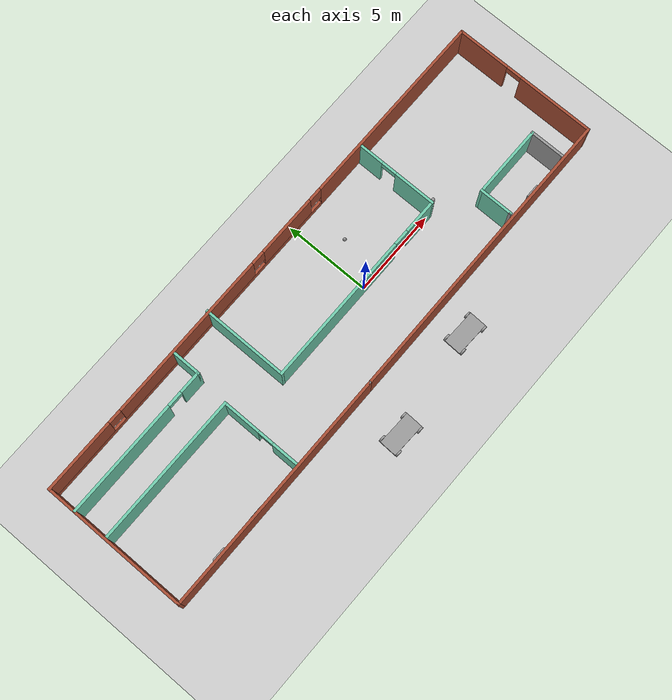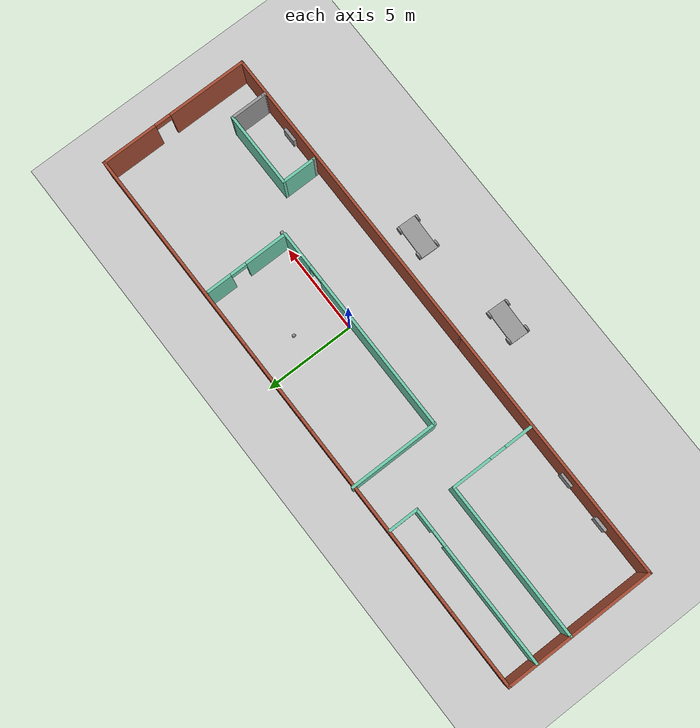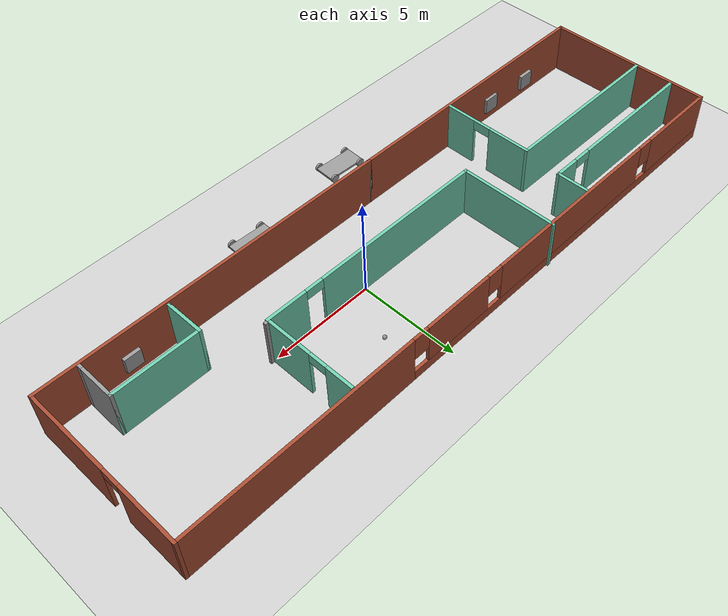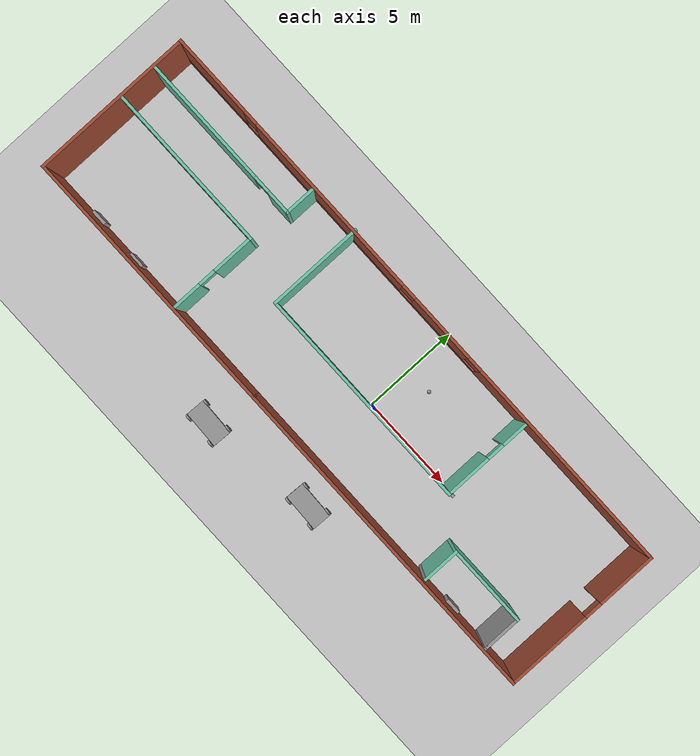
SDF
<sdf version="1.6">
 <world name="default">
  <plugin name="hello" filename="libhello.so"/>
  <light name="sun" type="directional">
   <pose>0 0 10 0 -0 0</pose>
   <diffuse>0.8 0.8 0.8 1</diffuse>
   <specular>0.2 0.2 0.2 1</specular>
   <attenuation>
    <range>1000</range>
    <constant>0.9</constant>
    <linear>0.01</linear>
    <quadratic>0.001</quadratic>
   </attenuation>
   <direction>-0.5 0.1 -0.9</direction>
  </light>
  <model name="ground_plane">
   <static>1</static>
   <link name="link">
    <collision name="collision">
     <geometry><plane><normal>0 0 1</normal><size>100 100</size></plane></geometry>
     <surface>
      <contact><collide_bitmask>65535</collide_bitmask></contact>
      <friction><ode><mu>100</mu><mu2>50</mu2></ode></friction>
     </surface>
    </collision>
    <visual name="visual">
     <cast_shadows>0</cast_shadows>
     <geometry><plane><normal>0 0 1</normal><size>100 100</size></plane></geometry>
     <material>
      <script><uri>file://media/materials/scripts/gazebo.material</uri><name>Gazebo/Grey</name></script>
     </material>
    </visual>
   </link>
  </model>
  <gravity>0 0 -9.8</gravity>
  <magnetic_field>6e-06 2.3e-05 -4.2e-05</magnetic_field>
  <atmosphere type="adiabatic"/>
  <physics name="default_physics" default="0" type="ode">
   <max_step_size>0.001</max_step_size>
   <real_time_factor>1</real_time_factor>
   <real_time_update_rate>1000</real_time_update_rate>
  </physics>
  <scene><ambient>0.4 0.4 0.4 1</ambient><background>0.7 0.7 0.7 1</background><shadows>1</shadows></scene>
  <spherical_coordinates>
   <surface_model>EARTH_WGS84</surface_model>
   <latitude_deg>0</latitude_deg>
   <longitude_deg>0</longitude_deg>
   <elevation>0</elevation>
   <heading_deg>0</heading_deg>
  </spherical_coordinates>
  <model name="BuildingModel">
   <pose>-2.30997 0.53903 0 0 -0 0</pose>
   <link name="Wall_27">
    <collision name="Wall_27_Collision">
     <geometry><box><size>0.15 0.15 2.5</size></box></geometry>
     <pose>0 0 1.25 0 -0 0</pose>
    </collision>
    <visual name="Wall_27_Visual">
     <pose>0 0 1.25 0 -0 0</pose>
     <geometry><box><size>0.15 0.15 2.5</size></box></geometry>
     <material>
      <script><uri>file://media/materials/scripts/gazebo.material</uri><name>Gazebo/Grey</name></script>
      <ambient>1 1 1 1</ambient>
     </material>
     <meta><layer>0</layer></meta>
    </visual>
    <pose>-1.675 -4.21418 0 0 -0 0</pose>
   </link>
   <link name="Wall_38">
    <collision name="Wall_38_Collision">
     <geometry><box><size>0.15 0.15 2.5</size></box></geometry>
     <pose>0 0 1.25 0 -0 0</pose>
    </collision>
    <visual name="Wall_38_Visual">
     <pose>0 0 1.25 0 -0 0</pose>
     <geometry><box><size>0.15 0.15 2.5</size></box></geometry>
     <material>
      <script><uri>file://media/materials/scripts/gazebo.material</uri><name>Gazebo/Grey</name></script>
      <ambient>1 1 1 1</ambient>
     </material>
     <meta><layer>0</layer></meta>
    </visual>
    <pose>7.62126 -0.567923 0 0 -0 0</pose>
   </link>
   <link name="Wall_45">
    <collision name="Wall_45_Collision">
     <geometry><box><size>17.5 0.15 2.5</size></box></geometry>
     <pose>0 0 1.25 0 -0 0</pose>
    </collision>
    <visual name="Wall_45_Visual">
     <pose>0 0 1.25 0 -0 0</pose>
     <geometry><box><size>17.5 0.15 2.5</size></box></geometry>
     <material>
      <script><uri>file://media/materials/scripts/gazebo.material</uri><name>Gazebo/Bricks</name></script>
      <ambient>1 1 1 1</ambient>
     </material>
     <meta><layer>0</layer></meta>
    </visual>
    <pose>7 -4.21418 0 0 -0 0</pose>
   </link>
   <link name="Wall_46">
    <pose>15.675 -0.039184 0 0 -0 1.5708</pose>
    <visual name="Wall_46_Visual_0">
     <pose>-2.01527 0 1.25 0 -0 0</pose>
     <geometry><box><size>4.46946 0.15 2.5</size></box></geometry>
     <material>
      <script><uri>file://media/materials/scripts/gazebo.material</uri><name>Gazebo/Bricks</name></script>
      <ambient>1 1 1 1</ambient>
     </material>
     <meta><layer>0</layer></meta>
    </visual>
    <collision name="Wall_46_Collision_0">
     <geometry><box><size>4.46946 0.15 2.5</size></box></geometry>
     <pose>-2.01527 0 1.25 0 -0 0</pose>
    </collision>
    <visual name="Wall_46_Visual_1">
     <pose>2.68473 0 1.25 0 -0 0</pose>
     <geometry><box><size>3.13054 0.15 2.5</size></box></geometry>
     <material>
      <script><uri>file://media/materials/scripts/gazebo.material</uri><name>Gazebo/Bricks</name></script>
      <ambient>1 1 1 1</ambient>
     </material>
     <meta><layer>0</layer></meta>
    </visual>
    <collision name="Wall_46_Collision_1">
     <geometry><box><size>3.13054 0.15 2.5</size></box></geometry>
     <pose>2.68473 0 1.25 0 -0 0</pose>
    </collision>
    <visual name="Wall_46_Visual_2">
     <pose>0.669456 0 2.25 0 -0 0</pose>
     <geometry><box><size>0.9 0.15 0.5</size></box></geometry>
     <material>
      <script><uri>file://media/materials/scripts/gazebo.material</uri><name>Gazebo/Bricks</name></script>
      <ambient>1 1 1 1</ambient>
     </material>
     <meta><layer>0</layer></meta>
    </visual>
    <collision name="Wall_46_Collision_2">
     <geometry><box><size>0.9 0.15 0.5</size></box></geometry>
     <pose>0.669456 0 2.25 0 -0 0</pose>
    </collision>
   </link>
   <link name="Wall_47">
    <pose>0 4.13582 0 0 -0 3.14159</pose>
    <visual name="Wall_47_Visual_0">
     <pose>-10.0427 0 1.25 0 -0 0</pose>
     <geometry><box><size>11.4147 0.15 2.5</size></box></geometry>
     <material>
      <script><uri>file://media/materials/scripts/gazebo.material</uri><name>Gazebo/Bricks</name></script>
      <ambient>1 1 1 1</ambient>
     </material>
     <meta><layer>0</layer></meta>
    </visual>
    <collision name="Wall_47_Collision_0">
     <geometry><box><size>11.4147 0.15 2.5</size></box></geometry>
     <pose>-10.0427 0 1.25 0 -0 0</pose>
    </collision>
    <visual name="Wall_47_Visual_1">
     <pose>5.70733 0 0.25 0 -0 0</pose>
     <geometry><box><size>20.0853 0.15 0.5</size></box></geometry>
     <material>
      <script><uri>file://media/materials/scripts/gazebo.material</uri><name>Gazebo/Bricks</name></script>
      <ambient>1 1 1 1</ambient>
     </material>
     <meta><layer>0</layer></meta>
    </visual>
    <collision name="Wall_47_Collision_1">
     <geometry><box><size>20.0853 0.15 0.5</size></box></geometry>
     <pose>5.70733 0 0.25 0 -0 0</pose>
    </collision>
    <visual name="Wall_47_Visual_2">
     <pose>-1.74527 0 1.5 0 -0 0</pose>
     <geometry><box><size>3.58012 0.15 2</size></box></geometry>
     <material>
      <script><uri>file://media/materials/scripts/gazebo.material</uri><name>Gazebo/Bricks</name></script>
      <ambient>1 1 1 1</ambient>
     </material>
     <meta><layer>0</layer></meta>
    </visual>
    <collision name="Wall_47_Collision_2">
     <geometry><box><size>3.58012 0.15 2</size></box></geometry>
     <pose>-1.74527 0 1.5 0 -0 0</pose>
    </collision>
    <visual name="Wall_47_Visual_3">
     <pose>5.73743 0 1.5 0 -0 0</pose>
     <geometry><box><size>9.78529 0.15 2</size></box></geometry>
     <material>
      <script><uri>file://media/materials/scripts/gazebo.material</uri><name>Gazebo/Bricks</name></script>
      <ambient>1 1 1 1</ambient>
     </material>
     <meta><layer>0</layer></meta>
    </visual>
    <collision name="Wall_47_Collision_3">
     <geometry><box><size>9.78529 0.15 2</size></box></geometry>
     <pose>5.73743 0 1.5 0 -0 0</pose>
    </collision>
    <visual name="Wall_47_Visual_4">
     <pose>13.59 0 1.5 0 -0 0</pose>
     <geometry><box><size>4.31992 0.15 2</size></box></geometry>
     <material>
      <script><uri>file://media/materials/scripts/gazebo.material</uri><name>Gazebo/Bricks</name></script>
      <ambient>1 1 1 1</ambient>
     </material>
     <meta><layer>0</layer></meta>
    </visual>
    <collision name="Wall_47_Collision_4">
     <geometry><box><size>4.31992 0.15 2</size></box></geometry>
     <pose>13.59 0 1.5 0 -0 0</pose>
    </collision>
    <visual name="Wall_47_Visual_5">
     <pose>-3.93533 0 1.9 0 -0 0</pose>
     <geometry><box><size>0.8 0.15 1.2</size></box></geometry>
     <material>
      <script><uri>file://media/materials/scripts/gazebo.material</uri><name>Gazebo/Bricks</name></script>
      <ambient>1 1 1 1</ambient>
     </material>
     <meta><layer>0</layer></meta>
    </visual>
    <collision name="Wall_47_Collision_5">
     <geometry><box><size>0.8 0.15 1.2</size></box></geometry>
     <pose>-3.93533 0 1.9 0 -0 0</pose>
    </collision>
    <visual name="Wall_47_Visual_6">
     <pose>0.444786 0 1.9 0 -0 0</pose>
     <geometry><box><size>0.8 0.15 1.2</size></box></geometry>
     <material>
      <script><uri>file://media/materials/scripts/gazebo.material</uri><name>Gazebo/Bricks</name></script>
      <ambient>1 1 1 1</ambient>
     </material>
     <meta><layer>0</layer></meta>
    </visual>
    <collision name="Wall_47_Collision_6">
     <geometry><box><size>0.8 0.15 1.2</size></box></geometry>
     <pose>0.444786 0 1.9 0 -0 0</pose>
    </collision>
    <visual name="Wall_47_Visual_7">
     <pose>11.0301 0 1.9 0 -0 0</pose>
     <geometry><box><size>0.8 0.15 1.2</size></box></geometry>
     <material>
      <script><uri>file://media/materials/scripts/gazebo.material</uri><name>Gazebo/Bricks</name></script>
      <ambient>1 1 1 1</ambient>
     </material>
     <meta><layer>0</layer></meta>
    </visual>
    <collision name="Wall_47_Collision_7">
     <geometry><box><size>0.8 0.15 1.2</size></box></geometry>
     <pose>11.0301 0 1.9 0 -0 0</pose>
    </collision>
   </link>
   <link name="Wall_48">
    <collision name="Wall_48_Collision">
     <geometry><box><size>8.5 0.15 2.5</size></box></geometry>
     <pose>0 0 1.25 0 -0 0</pose>
    </collision>
    <visual name="Wall_48_Visual">
     <pose>0 0 1.25 0 -0 0</pose>
     <geometry><box><size>8.5 0.15 2.5</size></box></geometry>
     <material>
      <script><uri>file://media/materials/scripts/gazebo.material</uri><name>Gazebo/Bricks</name></script>
      <ambient>1 1 1 1</ambient>
     </material>
     <meta><layer>0</layer></meta>
    </visual>
    <pose>-15.675 -0.039184 0 0 0 -1.5708</pose>
   </link>
   <link name="Wall_49">
    <collision name="Wall_49_Collision">
     <geometry><box><size>14.15 0.15 2.5</size></box></geometry>
     <pose>0 0 1.25 0 -0 0</pose>
    </collision>
    <visual name="Wall_49_Visual">
     <pose>0 0 1.25 0 -0 0</pose>
     <geometry><box><size>14.15 0.15 2.5</size></box></geometry>
     <material>
      <script><uri>file://media/materials/scripts/gazebo.material</uri><name>Gazebo/Bricks</name></script>
      <ambient>1 1 1 1</ambient>
     </material>
     <meta><layer>0</layer></meta>
    </visual>
    <pose>-8.675 -4.21418 0 0 -0 0</pose>
   </link>
   <link name="Wall_51">
    <pose>-11.2005 2.49243 0 0 -0 0</pose>
    <visual name="Wall_51_Visual_0">
     <pose>-1.11223 0 1.25 0 -0 0</pose>
     <geometry><box><size>6.77554 0.15 2.5</size></box></geometry>
     <material>
      <script><uri>file://media/materials/scripts/gazebo.material</uri><name>Gazebo/Grey</name></script>
      <ambient>0.435294 0.796078 0.67451 1</ambient>
     </material>
     <meta><layer>0</layer></meta>
    </visual>
    <collision name="Wall_51_Collision_0">
     <geometry><box><size>6.77554 0.15 2.5</size></box></geometry>
     <pose>-1.11223 0 1.25 0 -0 0</pose>
    </collision>
    <visual name="Wall_51_Visual_1">
     <pose>3.83777 0 1.25 0 -0 0</pose>
     <geometry><box><size>1.32446 0.15 2.5</size></box></geometry>
     <material>
      <script><uri>file://media/materials/scripts/gazebo.material</uri><name>Gazebo/Grey</name></script>
      <ambient>0.435294 0.796078 0.67451 1</ambient>
     </material>
     <meta><layer>0</layer></meta>
    </visual>
    <collision name="Wall_51_Collision_1">
     <geometry><box><size>1.32446 0.15 2.5</size></box></geometry>
     <pose>3.83777 0 1.25 0 -0 0</pose>
    </collision>
    <visual name="Wall_51_Visual_2">
     <pose>2.72554 0 2.25 0 -0 0</pose>
     <geometry><box><size>0.9 0.15 0.5</size></box></geometry>
     <material>
      <script><uri>file://media/materials/scripts/gazebo.material</uri><name>Gazebo/Grey</name></script>
      <ambient>0.435294 0.796078 0.67451 1</ambient>
     </material>
     <meta><layer>0</layer></meta>
    </visual>
    <collision name="Wall_51_Collision_2">
     <geometry><box><size>0.9 0.15 0.5</size></box></geometry>
     <pose>2.72554 0 2.25 0 -0 0</pose>
    </collision>
   </link>
   <link name="Wall_52">
    <collision name="Wall_52_Collision">
     <geometry><box><size>1.75 0.15 2.5</size></box></geometry>
     <pose>0 0 1.25 0 -0 0</pose>
    </collision>
    <visual name="Wall_52_Visual">
     <pose>0 0 1.25 0 -0 0</pose>
     <geometry><box><size>1.75 0.15 2.5</size></box></geometry>
     <material>
      <script><uri>file://media/materials/scripts/gazebo.material</uri><name>Gazebo/Grey</name></script>
      <ambient>0.435294 0.796078 0.67451 1</ambient>
     </material>
     <meta><layer>0</layer></meta>
    </visual>
    <pose>-6.77554 3.29243 0 0 -0 1.5708</pose>
   </link>
   <link name="Wall_54">
    <collision name="Wall_54_Collision">
     <geometry><box><size>8.75 0.15 2.5</size></box></geometry>
     <pose>0 0 1.25 0 -0 0</pose>
    </collision>
    <visual name="Wall_54_Visual">
     <pose>0 0 1.25 0 -0 0</pose>
     <geometry><box><size>8.75 0.15 2.5</size></box></geometry>
     <material>
      <script><uri>file://media/materials/scripts/gazebo.material</uri><name>Gazebo/Grey</name></script>
      <ambient>0.435294 0.796078 0.67451 1</ambient>
     </material>
     <meta><layer>0</layer></meta>
    </visual>
    <pose>-11.3261 0.492271 0 0 -0 0</pose>
   </link>
   <link name="Wall_55">
    <pose>-7.02613 -1.80773 0 0 0 -1.5708</pose>
    <visual name="Wall_55_Visual_0">
     <pose>-1.24835 0 1.25 0 -0 0</pose>
     <geometry><box><size>2.2533 0.15 2.5</size></box></geometry>
     <material>
      <script><uri>file://media/materials/scripts/gazebo.material</uri><name>Gazebo/Grey</name></script>
      <ambient>0.435294 0.796078 0.67451 1</ambient>
     </material>
     <meta><layer>0</layer></meta>
    </visual>
    <collision name="Wall_55_Collision_0">
     <geometry><box><size>2.2533 0.15 2.5</size></box></geometry>
     <pose>-1.24835 0 1.25 0 -0 0</pose>
    </collision>
    <visual name="Wall_55_Visual_1">
     <pose>1.57665 0 1.25 0 -0 0</pose>
     <geometry><box><size>1.5967 0.15 2.5</size></box></geometry>
     <material>
      <script><uri>file://media/materials/scripts/gazebo.material</uri><name>Gazebo/Grey</name></script>
      <ambient>0.435294 0.796078 0.67451 1</ambient>
     </material>
     <meta><layer>0</layer></meta>
    </visual>
    <collision name="Wall_55_Collision_1">
     <geometry><box><size>1.5967 0.15 2.5</size></box></geometry>
     <pose>1.57665 0 1.25 0 -0 0</pose>
    </collision>
    <visual name="Wall_55_Visual_2">
     <pose>0.328301 0 2.25 0 -0 0</pose>
     <geometry><box><size>0.9 0.15 0.5</size></box></geometry>
     <material>
      <script><uri>file://media/materials/scripts/gazebo.material</uri><name>Gazebo/Grey</name></script>
      <ambient>0.435294 0.796078 0.67451 1</ambient>
     </material>
     <meta><layer>0</layer></meta>
    </visual>
    <collision name="Wall_55_Collision_2">
     <geometry><box><size>0.9 0.15 0.5</size></box></geometry>
     <pose>0.328301 0 2.25 0 -0 0</pose>
    </collision>
   </link>
   <link name="Wall_57">
    <collision name="Wall_57_Collision">
     <geometry><box><size>5 0.15 2.5</size></box></geometry>
     <pose>0 0 1.25 0 -0 0</pose>
    </collision>
    <visual name="Wall_57_Visual">
     <pose>0 0 1.25 0 -0 0</pose>
     <geometry><box><size>5 0.15 2.5</size></box></geometry>
     <material>
      <script><uri>file://media/materials/scripts/gazebo.material</uri><name>Gazebo/Grey</name></script>
      <ambient>0.435294 0.796078 0.67451 1</ambient>
     </material>
     <meta><layer>0</layer></meta>
    </visual>
    <pose>-4.13473 1.78918 0 0 0 -1.5708</pose>
   </link>
   <link name="Wall_58">
    <pose>1.66527 -0.635816 0 0 -0 0</pose>
    <visual name="Wall_58_Visual_0">
     <pose>-1.47995 0 1.25 0 -0 0</pose>
     <geometry><box><size>8.79009 0.15 2.5</size></box></geometry>
     <material>
      <script><uri>file://media/materials/scripts/gazebo.material</uri><name>Gazebo/Grey</name></script>
      <ambient>0.435294 0.796078 0.67451 1</ambient>
     </material>
     <meta><layer>0</layer></meta>
    </visual>
    <collision name="Wall_58_Collision_0">
     <geometry><box><size>8.79009 0.15 2.5</size></box></geometry>
     <pose>-1.47995 0 1.25 0 -0 0</pose>
    </collision>
    <visual name="Wall_58_Visual_1">
     <pose>4.84504 0 1.25 0 -0 0</pose>
     <geometry><box><size>2.05991 0.15 2.5</size></box></geometry>
     <material>
      <script><uri>file://media/materials/scripts/gazebo.material</uri><name>Gazebo/Grey</name></script>
      <ambient>0.435294 0.796078 0.67451 1</ambient>
     </material>
     <meta><layer>0</layer></meta>
    </visual>
    <collision name="Wall_58_Collision_1">
     <geometry><box><size>2.05991 0.15 2.5</size></box></geometry>
     <pose>4.84504 0 1.25 0 -0 0</pose>
    </collision>
    <visual name="Wall_58_Visual_2">
     <pose>3.36509 0 2.25 0 -0 0</pose>
     <geometry><box><size>0.9 0.15 0.5</size></box></geometry>
     <material>
      <script><uri>file://media/materials/scripts/gazebo.material</uri><name>Gazebo/Grey</name></script>
      <ambient>0.435294 0.796078 0.67451 1</ambient>
     </material>
     <meta><layer>0</layer></meta>
    </visual>
    <collision name="Wall_58_Collision_2">
     <geometry><box><size>0.9 0.15 0.5</size></box></geometry>
     <pose>3.36509 0 2.25 0 -0 0</pose>
    </collision>
   </link>
   <link name="Wall_59">
    <pose>7.46527 1.66418 0 0 -0 1.5708</pose>
    <visual name="Wall_59_Visual_0">
     <pose>-1.15297 0 1.25 0 -0 0</pose>
     <geometry><box><size>2.44407 0.15 2.5</size></box></geometry>
     <material>
      <script><uri>file://media/materials/scripts/gazebo.material</uri><name>Gazebo/Grey</name></script>
      <ambient>0.435294 0.796078 0.67451 1</ambient>
     </material>
     <meta><layer>0</layer></meta>
    </visual>
    <collision name="Wall_59_Collision_0">
     <geometry><box><size>2.44407 0.15 2.5</size></box></geometry>
     <pose>-1.15297 0 1.25 0 -0 0</pose>
    </collision>
    <visual name="Wall_59_Visual_1">
     <pose>1.67203 0 1.25 0 -0 0</pose>
     <geometry><box><size>1.40593 0.15 2.5</size></box></geometry>
     <material>
      <script><uri>file://media/materials/scripts/gazebo.material</uri><name>Gazebo/Grey</name></script>
      <ambient>0.435294 0.796078 0.67451 1</ambient>
     </material>
     <meta><layer>0</layer></meta>
    </visual>
    <collision name="Wall_59_Collision_1">
     <geometry><box><size>1.40593 0.15 2.5</size></box></geometry>
     <pose>1.67203 0 1.25 0 -0 0</pose>
    </collision>
    <visual name="Wall_59_Visual_2">
     <pose>0.51907 0 2.25 0 -0 0</pose>
     <geometry><box><size>0.9 0.15 0.5</size></box></geometry>
     <material>
      <script><uri>file://media/materials/scripts/gazebo.material</uri><name>Gazebo/Grey</name></script>
      <ambient>0.435294 0.796078 0.67451 1</ambient>
     </material>
     <meta><layer>0</layer></meta>
    </visual>
    <collision name="Wall_59_Collision_2">
     <geometry><box><size>0.9 0.15 0.5</size></box></geometry>
     <pose>0.51907 0 2.25 0 -0 0</pose>
    </collision>
   </link>
   <link name="Wall_61">
    <collision name="Wall_61_Collision">
     <geometry><box><size>2 0.15 2.5</size></box></geometry>
     <pose>0 0 1.25 0 -0 0</pose>
    </collision>
    <visual name="Wall_61_Visual">
     <pose>0 0 1.25 0 -0 0</pose>
     <geometry><box><size>2 0.15 2.5</size></box></geometry>
     <material>
      <script><uri>file://media/materials/scripts/gazebo.material</uri><name>Gazebo/Grey</name></script>
      <ambient>0.435294 0.796078 0.67451 1</ambient>
     </material>
     <meta><layer>0</layer></meta>
    </visual>
    <pose>9.58983 -3.07817 0 0 -0 1.5708</pose>
   </link>
   <link name="Wall_62">
    <collision name="Wall_62_Collision">
     <geometry><box><size>4.25 0.15 2.5</size></box></geometry>
     <pose>0 0 1.25 0 -0 0</pose>
    </collision>
    <visual name="Wall_62_Visual">
     <pose>0 0 1.25 0 -0 0</pose>
     <geometry><box><size>4.25 0.15 2.5</size></box></geometry>
     <material>
      <script><uri>file://media/materials/scripts/gazebo.material</uri><name>Gazebo/Grey</name></script>
      <ambient>0.435294 0.796078 0.67451 1</ambient>
     </material>
     <meta><layer>0</layer></meta>
    </visual>
    <pose>11.6398 -2.15317 0 0 -0 0</pose>
   </link>
   <link name="Wall_63">
    <collision name="Wall_63_Collision">
     <geometry><box><size>2 0.15 2.5</size></box></geometry>
     <pose>0 0 1.25 0 -0 0</pose>
    </collision>
    <visual name="Wall_63_Visual">
     <pose>0 0 1.25 0 -0 0</pose>
     <geometry><box><size>2 0.15 2.5</size></box></geometry>
     <material>
      <script><uri>file://media/materials/scripts/gazebo.material</uri><name>Gazebo/Grey</name></script>
      <ambient>1 1 1 1</ambient>
     </material>
     <meta><layer>0</layer></meta>
    </visual>
    <pose>13.6898 -3.07817 0 0 0 -1.5708</pose>
   </link>
   <link name="Wall_65">
    <collision name="Wall_65_Collision">
     <geometry><box><size>0.25 0.15 2.5</size></box></geometry>
     <pose>0 0 1.25 0 -0 0</pose>
    </collision>
    <visual name="Wall_65_Visual">
     <pose>0 0 1.25 0 -0 0</pose>
     <geometry><box><size>0.25 0.15 2.5</size></box></geometry>
     <material>
      <script><uri>file://media/materials/scripts/gazebo.material</uri><name>Gazebo/Grey</name></script>
      <ambient>1 1 1 1</ambient>
     </material>
     <meta><layer>0</layer></meta>
    </visual>
    <pose>13.6898 -4.05317 0 0 0 -1.5708</pose>
   </link>
   <link name="Wall_67">
    <collision name="Wall_67_Collision">
     <geometry><box><size>0.15 0.15 2.5</size></box></geometry>
     <pose>0 0 1.25 0 -0 0</pose>
    </collision>
    <visual name="Wall_67_Visual">
     <pose>0 0 1.25 0 -0 0</pose>
     <geometry><box><size>0.15 0.15 2.5</size></box></geometry>
     <material>
      <script><uri>file://media/materials/scripts/gazebo.material</uri><name>Gazebo/Grey</name></script>
      <ambient>1 1 1 1</ambient>
     </material>
     <meta><layer>0</layer></meta>
    </visual>
    <pose>9.58983 -4.00317 0 0 -0 0</pose>
   </link>
   <link name="Window_4">
    <collision name="Window_4_Collision">
     <geometry><box><size>0.8 0.17 0.8</size></box></geometry>
     <pose>0 0 0.4 0 -0 0</pose>
    </collision>
    <visual name="Window_4_Visual">
     <pose>0 0 0.4 0 -0 0</pose>
     <geometry><box><size>0.8 0.17 0.8</size></box></geometry>
     <material>
      <script><uri>file://media/materials/scripts/gazebo.material</uri><name>Gazebo/Grey</name></script>
     </material>
    </visual>
    <pose>-12.6726 -4.02191 0.5 0 -0 0</pose>
   </link>
   <link name="Window_5">
    <collision name="Window_5_Collision">
     <geometry><box><size>0.8 0.17 0.8</size></box></geometry>
     <pose>0 0 0.4 0 -0 0</pose>
    </collision>
    <visual name="Window_5_Visual">
     <pose>0 0 0.4 0 -0 0</pose>
     <geometry><box><size>0.8 0.17 0.8</size></box></geometry>
     <material>
      <script><uri>file://media/materials/scripts/gazebo.material</uri><name>Gazebo/Grey</name></script>
     </material>
    </visual>
    <pose>-10.0567 -4.08275 0.5 0 -0 0</pose>
   </link>
   <link name="Window_6">
    <collision name="Window_6_Collision">
     <geometry><box><size>0.8 0.17 0.8</size></box></geometry>
     <pose>0 0 0.4 0 -0 0</pose>
    </collision>
    <visual name="Window_6_Visual">
     <pose>0 0 0.4 0 -0 0</pose>
     <geometry><box><size>0.8 0.17 0.8</size></box></geometry>
     <material>
      <script><uri>file://media/materials/scripts/gazebo.material</uri><name>Gazebo/Grey</name></script>
     </material>
    </visual>
    <pose>11.6614 -4.02191 0.5 0 -0 0</pose>
   </link>
   <static>1</static>
  </model>
  <model name="CarModel">
   <link name="link_0">
    <inertial>
     <mass>1</mass>
     <inertia>
      <ixx>0.166667</ixx>
      <ixy>0</ixy>
      <ixz>0</ixz>
      <iyy>0.166667</iyy>
      <iyz>0</iyz>
      <izz>0.166667</izz>
     </inertia>
     <pose>0 0 0.2 0 -0 0</pose>
    </inertial>
    <visual name="visual">
     <geometry><box><size>2 1 0.1</size></box></geometry>
     <material>
      <lighting>1</lighting>
      <script><uri>file://media/materials/scripts/gazebo.material</uri><name>Gazebo/Grey</name></script>
      <shader type="pixel"><normal_map>__default__</normal_map></shader>
      <ambient>0.3 0.3 0.3 1</ambient>
      <diffuse>0.7 0.7 0.7 1</diffuse>
      <specular>0.01 0.01 0.01 1</specular>
      <emissive>0 0 0 1</emissive>
     </material>
    </visual>
    <collision name="collision">
     <geometry><box><size>2 1 0.1</size></box></geometry>
     <surface>
      <friction>
       <ode><mu>1</mu><mu2>1</mu2><fdir1>0 0 0</fdir1><slip1>0</slip1><slip2>0</slip2></ode>
       <torsional>
        <coefficient>1</coefficient>
        <patch_radius>0</patch_radius>
        <surface_radius>0</surface_radius>
        <use_patch_radius>1</use_patch_radius>
        <ode><slip>0</slip></ode>
       </torsional>
      </friction>
      <bounce><restitution_coefficient>0</restitution_coefficient><threshold>1e+06</threshold></bounce>
      <contact>
       <collide_without_contact>0</collide_without_contact>
       <collide_without_contact_bitmask>1</collide_without_contact_bitmask>
       <collide_bitmask>1</collide_bitmask>
       <ode>
        <soft_cfm>0</soft_cfm>
        <soft_erp>0.2</soft_erp>
        <kp>1e+13</kp>
        <kd>1</kd>
        <max_vel>0.01</max_vel>
        <min_depth>0</min_depth>
       </ode>
       <bullet>
        <split_impulse>1</split_impulse>
        <split_impulse_penetration_threshold>-0.01</split_impulse_penetration_threshold>
        <soft_cfm>0</soft_cfm>
        <soft_erp>0.2</soft_erp>
        <kp>1e+13</kp>
        <kd>1</kd>
       </bullet>
      </contact>
     </surface>
    </collision>
   </link>
   <link name="link_1">
    <pose>-0.8 0.55016 0 0 -0 0</pose>
    <inertial>
     <mass>1</mass>
     <inertia><ixx>0.145833</ixx><ixy>0</ixy><ixz>0</ixz><iyy>0.145833</iyy><iyz>0</iyz><izz>0.125</izz></inertia>
    </inertial>
    <visual name="visual">
     <pose>0 0 0 1.57 -0 0</pose>
     <geometry><cylinder><radius>0.2</radius><length>0.1</length></cylinder></geometry>
     <material>
      <lighting>1</lighting>
      <script><uri>file://media/materials/scripts/gazebo.material</uri><name>Gazebo/Grey</name></script>
      <shader type="pixel"><normal_map>__default__</normal_map></shader>
      <ambient>0.3 0.3 0.3 1</ambient>
      <diffuse>0.7 0.7 0.7 1</diffuse>
      <specular>0.01 0.01 0.01 1</specular>
      <emissive>0 0 0 1</emissive>
     </material>
    </visual>
    <collision name="collision">
     <pose>0 0 0 1.57 -0 0</pose>
     <geometry><cylinder><radius>0.2</radius><length>0.1</length></cylinder></geometry>
     <surface>
      <friction>
       <ode><mu>1</mu><mu2>1</mu2><fdir1>0 0 0</fdir1><slip1>0</slip1><slip2>0</slip2></ode>
       <torsional>
        <coefficient>1</coefficient>
        <patch_radius>0</patch_radius>
        <surface_radius>0</surface_radius>
        <use_patch_radius>1</use_patch_radius>
        <ode><slip>0</slip></ode>
       </torsional>
      </friction>
      <bounce><restitution_coefficient>0</restitution_coefficient><threshold>1e+06</threshold></bounce>
      <contact>
       <collide_without_contact>0</collide_without_contact>
       <collide_without_contact_bitmask>1</collide_without_contact_bitmask>
       <collide_bitmask>1</collide_bitmask>
       <ode>
        <soft_cfm>0</soft_cfm>
        <soft_erp>0.2</soft_erp>
        <kp>1e+13</kp>
        <kd>1</kd>
        <max_vel>0.01</max_vel>
        <min_depth>0</min_depth>
       </ode>
       <bullet>
        <split_impulse>1</split_impulse>
        <split_impulse_penetration_threshold>-0.01</split_impulse_penetration_threshold>
        <soft_cfm>0</soft_cfm>
        <soft_erp>0.2</soft_erp>
        <kp>1e+13</kp>
        <kd>1</kd>
       </bullet>
      </contact>
     </surface>
    </collision>
   </link>
   <link name="link_1_clone">
    <pose>0.8 -0.550159 0 0 -0 0</pose>
    <inertial>
     <mass>1</mass>
     <inertia><ixx>0.145833</ixx><ixy>0</ixy><ixz>0</ixz><iyy>0.145833</iyy><iyz>0</iyz><izz>0.125</izz></inertia>
    </inertial>
    <visual name="visual">
     <pose>0 0 0 1.57 -0 0</pose>
     <geometry><cylinder><radius>0.2</radius><length>0.1</length></cylinder></geometry>
     <material>
      <lighting>1</lighting>
      <script><uri>file://media/materials/scripts/gazebo.material</uri><name>Gazebo/Grey</name></script>
      <shader type="pixel"><normal_map>__default__</normal_map></shader>
      <ambient>0.3 0.3 0.3 1</ambient>
      <diffuse>0.7 0.7 0.7 1</diffuse>
      <specular>0.01 0.01 0.01 1</specular>
      <emissive>0 0 0 1</emissive>
     </material>
    </visual>
    <collision name="collision">
     <pose>0 0 0 1.57 -0 0</pose>
     <geometry><cylinder><radius>0.2</radius><length>0.1</length></cylinder></geometry>
     <surface>
      <friction>
       <ode><mu>1</mu><mu2>1</mu2><fdir1>0 0 0</fdir1><slip1>0</slip1><slip2>0</slip2></ode>
       <torsional>
        <coefficient>1</coefficient>
        <patch_radius>0</patch_radius>
        <surface_radius>0</surface_radius>
        <use_patch_radius>1</use_patch_radius>
        <ode><slip>0</slip></ode>
       </torsional>
      </friction>
      <bounce><restitution_coefficient>0</restitution_coefficient><threshold>1e+06</threshold></bounce>
      <contact>
       <collide_without_contact>0</collide_without_contact>
       <collide_without_contact_bitmask>1</collide_without_contact_bitmask>
       <collide_bitmask>1</collide_bitmask>
       <ode>
        <soft_cfm>0</soft_cfm>
        <soft_erp>0.2</soft_erp>
        <kp>1e+13</kp>
        <kd>1</kd>
        <max_vel>0.01</max_vel>
        <min_depth>0</min_depth>
       </ode>
       <bullet>
        <split_impulse>1</split_impulse>
        <split_impulse_penetration_threshold>-0.01</split_impulse_penetration_threshold>
        <soft_cfm>0</soft_cfm>
        <soft_erp>0.2</soft_erp>
        <kp>1e+13</kp>
        <kd>1</kd>
       </bullet>
      </contact>
     </surface>
    </collision>
   </link>
   <link name="link_1_clone_clone">
    <pose>0.8 0.55016 0 0 -0 0</pose>
    <inertial>
     <mass>1</mass>
     <inertia><ixx>0.145833</ixx><ixy>0</ixy><ixz>0</ixz><iyy>0.145833</iyy><iyz>0</iyz><izz>0.125</izz></inertia>
    </inertial>
    <visual name="visual">
     <pose>0 0 0 1.57 -0 0</pose>
     <geometry><cylinder><radius>0.2</radius><length>0.1</length></cylinder></geometry>
     <material>
      <lighting>1</lighting>
      <script><uri>file://media/materials/scripts/gazebo.material</uri><name>Gazebo/Grey</name></script>
      <shader type="pixel"><normal_map>__default__</normal_map></shader>
      <ambient>0.3 0.3 0.3 1</ambient>
      <diffuse>0.7 0.7 0.7 1</diffuse>
      <specular>0.01 0.01 0.01 1</specular>
      <emissive>0 0 0 1</emissive>
     </material>
    </visual>
    <collision name="collision">
     <pose>0 0 0 1.57 -0 0</pose>
     <geometry><cylinder><radius>0.2</radius><length>0.1</length></cylinder></geometry>
     <surface>
      <friction>
       <ode><mu>1</mu><mu2>1</mu2><fdir1>0 0 0</fdir1><slip1>0</slip1><slip2>0</slip2></ode>
       <torsional>
        <coefficient>1</coefficient>
        <patch_radius>0</patch_radius>
        <surface_radius>0</surface_radius>
        <use_patch_radius>1</use_patch_radius>
        <ode><slip>0</slip></ode>
       </torsional>
      </friction>
      <bounce><restitution_coefficient>0</restitution_coefficient><threshold>1e+06</threshold></bounce>
      <contact>
       <collide_without_contact>0</collide_without_contact>
       <collide_without_contact_bitmask>1</collide_without_contact_bitmask>
       <collide_bitmask>1</collide_bitmask>
       <ode>
        <soft_cfm>0</soft_cfm>
        <soft_erp>0.2</soft_erp>
        <kp>1e+13</kp>
        <kd>1</kd>
        <max_vel>0.01</max_vel>
        <min_depth>0</min_depth>
       </ode>
       <bullet>
        <split_impulse>1</split_impulse>
        <split_impulse_penetration_threshold>-0.01</split_impulse_penetration_threshold>
        <soft_cfm>0</soft_cfm>
        <soft_erp>0.2</soft_erp>
        <kp>1e+13</kp>
        <kd>1</kd>
       </bullet>
      </contact>
     </surface>
    </collision>
   </link>
   <link name="link_1_clone_clone_0">
    <pose>-0.8 -0.550159 0 0 -0 0</pose>
    <inertial>
     <mass>1</mass>
     <inertia><ixx>0.145833</ixx><ixy>0</ixy><ixz>0</ixz><iyy>0.145833</iyy><iyz>0</iyz><izz>0.125</izz></inertia>
    </inertial>
    <visual name="visual">
     <pose>0 0 0 1.57 -0 0</pose>
     <geometry><cylinder><radius>0.2</radius><length>0.1</length></cylinder></geometry>
     <material>
      <lighting>1</lighting>
      <script><uri>file://media/materials/scripts/gazebo.material</uri><name>Gazebo/Grey</name></script>
      <shader type="pixel"><normal_map>__default__</normal_map></shader>
      <ambient>0.3 0.3 0.3 1</ambient>
      <diffuse>0.7 0.7 0.7 1</diffuse>
      <specular>0.01 0.01 0.01 1</specular>
      <emissive>0 0 0 1</emissive>
     </material>
    </visual>
    <collision name="collision">
     <pose>0 0 0 1.57 -0 0</pose>
     <geometry><cylinder><radius>0.2</radius><length>0.1</length></cylinder></geometry>
     <surface>
      <friction>
       <ode><mu>1</mu><mu2>1</mu2><fdir1>0 0 0</fdir1><slip1>0</slip1><slip2>0</slip2></ode>
       <torsional>
        <coefficient>1</coefficient>
        <patch_radius>0</patch_radius>
        <surface_radius>0</surface_radius>
        <use_patch_radius>1</use_patch_radius>
        <ode><slip>0</slip></ode>
       </torsional>
      </friction>
      <bounce><restitution_coefficient>0</restitution_coefficient><threshold>1e+06</threshold></bounce>
      <contact>
       <collide_without_contact>0</collide_without_contact>
       <collide_without_contact_bitmask>1</collide_without_contact_bitmask>
       <collide_bitmask>1</collide_bitmask>
       <ode>
        <soft_cfm>0</soft_cfm>
        <soft_erp>0.2</soft_erp>
        <kp>1e+13</kp>
        <kd>1</kd>
        <max_vel>0.01</max_vel>
        <min_depth>0</min_depth>
       </ode>
       <bullet>
        <split_impulse>1</split_impulse>
        <split_impulse_penetration_threshold>-0.01</split_impulse_penetration_threshold>
        <soft_cfm>0</soft_cfm>
        <soft_erp>0.2</soft_erp>
        <kp>1e+13</kp>
        <kd>1</kd>
       </bullet>
      </contact>
     </surface>
    </collision>
   </link>
   <joint name="link_0_JOINT_1" type="revolute">
    <parent>link_0</parent>
    <child>link_1_clone_clone_0</child>
    <axis>
     <xyz>0 0 1</xyz>
     <use_parent_model_frame>0</use_parent_model_frame>
     <limit>
      <lower>-1.79769e+308</lower>
      <upper>1.79769e+308</upper>
      <effort>-1</effort>
      <velocity>-1</velocity>
     </limit>
     <dynamics>
      <spring_reference>0</spring_reference>
      <spring_stiffness>0</spring_stiffness>
      <damping>0</damping>
     </dynamics>
    </axis>
    <physics>
     <ode><limit><cfm>0</cfm><erp>0.2</erp></limit><suspension><cfm>0</cfm><erp>0.2</erp></suspension></ode>
    </physics>
   </joint>
   <joint name="link_0_JOINT_2" type="revolute">
    <parent>link_0</parent>
    <child>link_1</child>
    <axis>
     <xyz>0 0 1</xyz>
     <use_parent_model_frame>0</use_parent_model_frame>
     <limit>
      <lower>-1.79769e+308</lower>
      <upper>1.79769e+308</upper>
      <effort>-1</effort>
      <velocity>-1</velocity>
     </limit>
     <dynamics>
      <spring_reference>0</spring_reference>
      <spring_stiffness>0</spring_stiffness>
      <damping>0</damping>
     </dynamics>
    </axis>
    <physics>
     <ode><limit><cfm>0</cfm><erp>0.2</erp></limit><suspension><cfm>0</cfm><erp>0.2</erp></suspension></ode>
    </physics>
   </joint>
   <joint name="link_0_JOINT_3" type="revolute">
    <parent>link_0</parent>
    <child>link_1_clone_clone</child>
    <axis>
     <xyz>0 0 1</xyz>
     <use_parent_model_frame>0</use_parent_model_frame>
     <limit>
      <lower>-1.79769e+308</lower>
      <upper>1.79769e+308</upper>
      <effort>-1</effort>
      <velocity>-1</velocity>
     </limit>
     <dynamics>
      <spring_reference>0</spring_reference>
      <spring_stiffness>0</spring_stiffness>
      <damping>0</damping>
     </dynamics>
    </axis>
    <physics>
     <ode><limit><cfm>0</cfm><erp>0.2</erp></limit><suspension><cfm>0</cfm><erp>0.2</erp></suspension></ode>
    </physics>
   </joint>
   <joint name="link_0_JOINT_4" type="revolute">
    <parent>link_0</parent>
    <child>link_1_clone</child>
    <axis>
     <xyz>1 0 0</xyz>
     <use_parent_model_frame>0</use_parent_model_frame>
     <limit>
      <lower>-1.79769e+308</lower>
      <upper>1.79769e+308</upper>
      <effort>-1</effort>
      <velocity>-1</velocity>
     </limit>
     <dynamics>
      <spring_reference>0</spring_reference>
      <spring_stiffness>0</spring_stiffness>
      <damping>0</damping>
     </dynamics>
    </axis>
    <physics>
     <ode><limit><cfm>0</cfm><erp>0.2</erp></limit><suspension><cfm>0</cfm><erp>0.2</erp></suspension></ode>
    </physics>
   </joint>
   <static>0</static>
   <pose>-4.5895 -6.32871 0.200039 9e-06 6e-06 -0.036675</pose>
  </model>
  <model name="CarModel_0">
   <link name="link_0">
    <inertial>
     <mass>1</mass>
     <inertia>
      <ixx>0.166667</ixx>
      <ixy>0</ixy>
      <ixz>0</ixz>
      <iyy>0.166667</iyy>
      <iyz>0</iyz>
      <izz>0.166667</izz>
     </inertia>
     <pose>0 0 0.2 0 -0 0</pose>
    </inertial>
    <visual name="visual">
     <geometry><box><size>2 1 0.1</size></box></geometry>
     <material>
      <lighting>1</lighting>
      <script><uri>file://media/materials/scripts/gazebo.material</uri><name>Gazebo/Grey</name></script>
      <shader type="pixel"><normal_map>__default__</normal_map></shader>
      <ambient>0.3 0.3 0.3 1</ambient>
      <diffuse>0.7 0.7 0.7 1</diffuse>
      <specular>0.01 0.01 0.01 1</specular>
      <emissive>0 0 0 1</emissive>
     </material>
    </visual>
    <collision name="collision">
     <geometry><box><size>2 1 0.1</size></box></geometry>
     <surface>
      <friction>
       <ode><mu>1</mu><mu2>1</mu2><fdir1>0 0 0</fdir1><slip1>0</slip1><slip2>0</slip2></ode>
       <torsional>
        <coefficient>1</coefficient>
        <patch_radius>0</patch_radius>
        <surface_radius>0</surface_radius>
        <use_patch_radius>1</use_patch_radius>
        <ode><slip>0</slip></ode>
       </torsional>
      </friction>
      <bounce><restitution_coefficient>0</restitution_coefficient><threshold>1e+06</threshold></bounce>
      <contact>
       <collide_without_contact>0</collide_without_contact>
       <collide_without_contact_bitmask>1</collide_without_contact_bitmask>
       <collide_bitmask>1</collide_bitmask>
       <ode>
        <soft_cfm>0</soft_cfm>
        <soft_erp>0.2</soft_erp>
        <kp>1e+13</kp>
        <kd>1</kd>
        <max_vel>0.01</max_vel>
        <min_depth>0</min_depth>
       </ode>
       <bullet>
        <split_impulse>1</split_impulse>
        <split_impulse_penetration_threshold>-0.01</split_impulse_penetration_threshold>
        <soft_cfm>0</soft_cfm>
        <soft_erp>0.2</soft_erp>
        <kp>1e+13</kp>
        <kd>1</kd>
       </bullet>
      </contact>
     </surface>
    </collision>
   </link>
   <link name="link_1">
    <pose>-0.8 0.55016 0 0 -0 0</pose>
    <inertial>
     <mass>1</mass>
     <inertia><ixx>0.145833</ixx><ixy>0</ixy><ixz>0</ixz><iyy>0.145833</iyy><iyz>0</iyz><izz>0.125</izz></inertia>
    </inertial>
    <visual name="visual">
     <pose>0 0 0 1.57 -0 0</pose>
     <geometry><cylinder><radius>0.2</radius><length>0.1</length></cylinder></geometry>
     <material>
      <lighting>1</lighting>
      <script><uri>file://media/materials/scripts/gazebo.material</uri><name>Gazebo/Grey</name></script>
      <shader type="pixel"><normal_map>__default__</normal_map></shader>
      <ambient>0.3 0.3 0.3 1</ambient>
      <diffuse>0.7 0.7 0.7 1</diffuse>
      <specular>0.01 0.01 0.01 1</specular>
      <emissive>0 0 0 1</emissive>
     </material>
    </visual>
    <collision name="collision">
     <pose>0 0 0 1.57 -0 0</pose>
     <geometry><cylinder><radius>0.2</radius><length>0.1</length></cylinder></geometry>
     <surface>
      <friction>
       <ode><mu>1</mu><mu2>1</mu2><fdir1>0 0 0</fdir1><slip1>0</slip1><slip2>0</slip2></ode>
       <torsional>
        <coefficient>1</coefficient>
        <patch_radius>0</patch_radius>
        <surface_radius>0</surface_radius>
        <use_patch_radius>1</use_patch_radius>
        <ode><slip>0</slip></ode>
       </torsional>
      </friction>
      <bounce><restitution_coefficient>0</restitution_coefficient><threshold>1e+06</threshold></bounce>
      <contact>
       <collide_without_contact>0</collide_without_contact>
       <collide_without_contact_bitmask>1</collide_without_contact_bitmask>
       <collide_bitmask>1</collide_bitmask>
       <ode>
        <soft_cfm>0</soft_cfm>
        <soft_erp>0.2</soft_erp>
        <kp>1e+13</kp>
        <kd>1</kd>
        <max_vel>0.01</max_vel>
        <min_depth>0</min_depth>
       </ode>
       <bullet>
        <split_impulse>1</split_impulse>
        <split_impulse_penetration_threshold>-0.01</split_impulse_penetration_threshold>
        <soft_cfm>0</soft_cfm>
        <soft_erp>0.2</soft_erp>
        <kp>1e+13</kp>
        <kd>1</kd>
       </bullet>
      </contact>
     </surface>
    </collision>
   </link>
   <link name="link_1_clone">
    <pose>0.8 -0.550159 0 0 -0 0</pose>
    <inertial>
     <mass>1</mass>
     <inertia><ixx>0.145833</ixx><ixy>0</ixy><ixz>0</ixz><iyy>0.145833</iyy><iyz>0</iyz><izz>0.125</izz></inertia>
    </inertial>
    <visual name="visual">
     <pose>0 0 0 1.57 -0 0</pose>
     <geometry><cylinder><radius>0.2</radius><length>0.1</length></cylinder></geometry>
     <material>
      <lighting>1</lighting>
      <script><uri>file://media/materials/scripts/gazebo.material</uri><name>Gazebo/Grey</name></script>
      <shader type="pixel"><normal_map>__default__</normal_map></shader>
      <ambient>0.3 0.3 0.3 1</ambient>
      <diffuse>0.7 0.7 0.7 1</diffuse>
      <specular>0.01 0.01 0.01 1</specular>
      <emissive>0 0 0 1</emissive>
     </material>
    </visual>
    <collision name="collision">
     <pose>0 0 0 1.57 -0 0</pose>
     <geometry><cylinder><radius>0.2</radius><length>0.1</length></cylinder></geometry>
     <surface>
      <friction>
       <ode><mu>1</mu><mu2>1</mu2><fdir1>0 0 0</fdir1><slip1>0</slip1><slip2>0</slip2></ode>
       <torsional>
        <coefficient>1</coefficient>
        <patch_radius>0</patch_radius>
        <surface_radius>0</surface_radius>
        <use_patch_radius>1</use_patch_radius>
        <ode><slip>0</slip></ode>
       </torsional>
      </friction>
      <bounce><restitution_coefficient>0</restitution_coefficient><threshold>1e+06</threshold></bounce>
      <contact>
       <collide_without_contact>0</collide_without_contact>
       <collide_without_contact_bitmask>1</collide_without_contact_bitmask>
       <collide_bitmask>1</collide_bitmask>
       <ode>
        <soft_cfm>0</soft_cfm>
        <soft_erp>0.2</soft_erp>
        <kp>1e+13</kp>
        <kd>1</kd>
        <max_vel>0.01</max_vel>
        <min_depth>0</min_depth>
       </ode>
       <bullet>
        <split_impulse>1</split_impulse>
        <split_impulse_penetration_threshold>-0.01</split_impulse_penetration_threshold>
        <soft_cfm>0</soft_cfm>
        <soft_erp>0.2</soft_erp>
        <kp>1e+13</kp>
        <kd>1</kd>
       </bullet>
      </contact>
     </surface>
    </collision>
   </link>
   <link name="link_1_clone_clone">
    <pose>0.8 0.55016 0 0 -0 0</pose>
    <inertial>
     <mass>1</mass>
     <inertia><ixx>0.145833</ixx><ixy>0</ixy><ixz>0</ixz><iyy>0.145833</iyy><iyz>0</iyz><izz>0.125</izz></inertia>
    </inertial>
    <visual name="visual">
     <pose>0 0 0 1.57 -0 0</pose>
     <geometry><cylinder><radius>0.2</radius><length>0.1</length></cylinder></geometry>
     <material>
      <lighting>1</lighting>
      <script><uri>file://media/materials/scripts/gazebo.material</uri><name>Gazebo/Grey</name></script>
      <shader type="pixel"><normal_map>__default__</normal_map></shader>
      <ambient>0.3 0.3 0.3 1</ambient>
      <diffuse>0.7 0.7 0.7 1</diffuse>
      <specular>0.01 0.01 0.01 1</specular>
      <emissive>0 0 0 1</emissive>
     </material>
    </visual>
    <collision name="collision">
     <pose>0 0 0 1.57 -0 0</pose>
     <geometry><cylinder><radius>0.2</radius><length>0.1</length></cylinder></geometry>
     <surface>
      <friction>
       <ode><mu>1</mu><mu2>1</mu2><fdir1>0 0 0</fdir1><slip1>0</slip1><slip2>0</slip2></ode>
       <torsional>
        <coefficient>1</coefficient>
        <patch_radius>0</patch_radius>
        <surface_radius>0</surface_radius>
        <use_patch_radius>1</use_patch_radius>
        <ode><slip>0</slip></ode>
       </torsional>
      </friction>
      <bounce><restitution_coefficient>0</restitution_coefficient><threshold>1e+06</threshold></bounce>
      <contact>
       <collide_without_contact>0</collide_without_contact>
       <collide_without_contact_bitmask>1</collide_without_contact_bitmask>
       <collide_bitmask>1</collide_bitmask>
       <ode>
        <soft_cfm>0</soft_cfm>
        <soft_erp>0.2</soft_erp>
        <kp>1e+13</kp>
        <kd>1</kd>
        <max_vel>0.01</max_vel>
        <min_depth>0</min_depth>
       </ode>
       <bullet>
        <split_impulse>1</split_impulse>
        <split_impulse_penetration_threshold>-0.01</split_impulse_penetration_threshold>
        <soft_cfm>0</soft_cfm>
        <soft_erp>0.2</soft_erp>
        <kp>1e+13</kp>
        <kd>1</kd>
       </bullet>
      </contact>
     </surface>
    </collision>
   </link>
   <link name="link_1_clone_clone_0">
    <pose>-0.8 -0.550159 0 0 -0 0</pose>
    <inertial>
     <mass>1</mass>
     <inertia><ixx>0.145833</ixx><ixy>0</ixy><ixz>0</ixz><iyy>0.145833</iyy><iyz>0</iyz><izz>0.125</izz></inertia>
    </inertial>
    <visual name="visual">
     <pose>0 0 0 1.57 -0 0</pose>
     <geometry><cylinder><radius>0.2</radius><length>0.1</length></cylinder></geometry>
     <material>
      <lighting>1</lighting>
      <script><uri>file://media/materials/scripts/gazebo.material</uri><name>Gazebo/Grey</name></script>
      <shader type="pixel"><normal_map>__default__</normal_map></shader>
      <ambient>0.3 0.3 0.3 1</ambient>
      <diffuse>0.7 0.7 0.7 1</diffuse>
      <specular>0.01 0.01 0.01 1</specular>
      <emissive>0 0 0 1</emissive>
     </material>
    </visual>
    <collision name="collision">
     <pose>0 0 0 1.57 -0 0</pose>
     <geometry><cylinder><radius>0.2</radius><length>0.1</length></cylinder></geometry>
     <surface>
      <friction>
       <ode><mu>1</mu><mu2>1</mu2><fdir1>0 0 0</fdir1><slip1>0</slip1><slip2>0</slip2></ode>
       <torsional>
        <coefficient>1</coefficient>
        <patch_radius>0</patch_radius>
        <surface_radius>0</surface_radius>
        <use_patch_radius>1</use_patch_radius>
        <ode><slip>0</slip></ode>
       </torsional>
      </friction>
      <bounce><restitution_coefficient>0</restitution_coefficient><threshold>1e+06</threshold></bounce>
      <contact>
       <collide_without_contact>0</collide_without_contact>
       <collide_without_contact_bitmask>1</collide_without_contact_bitmask>
       <collide_bitmask>1</collide_bitmask>
       <ode>
        <soft_cfm>0</soft_cfm>
        <soft_erp>0.2</soft_erp>
        <kp>1e+13</kp>
        <kd>1</kd>
        <max_vel>0.01</max_vel>
        <min_depth>0</min_depth>
       </ode>
       <bullet>
        <split_impulse>1</split_impulse>
        <split_impulse_penetration_threshold>-0.01</split_impulse_penetration_threshold>
        <soft_cfm>0</soft_cfm>
        <soft_erp>0.2</soft_erp>
        <kp>1e+13</kp>
        <kd>1</kd>
       </bullet>
      </contact>
     </surface>
    </collision>
   </link>
   <joint name="link_0_JOINT_1" type="revolute">
    <parent>link_0</parent>
    <child>link_1_clone_clone_0</child>
    <axis>
     <xyz>0 0 1</xyz>
     <use_parent_model_frame>0</use_parent_model_frame>
     <limit>
      <lower>-1.79769e+308</lower>
      <upper>1.79769e+308</upper>
      <effort>-1</effort>
      <velocity>-1</velocity>
     </limit>
     <dynamics>
      <spring_reference>0</spring_reference>
      <spring_stiffness>0</spring_stiffness>
      <damping>0</damping>
     </dynamics>
    </axis>
    <physics>
     <ode><limit><cfm>0</cfm><erp>0.2</erp></limit><suspension><cfm>0</cfm><erp>0.2</erp></suspension></ode>
    </physics>
   </joint>
   <joint name="link_0_JOINT_2" type="revolute">
    <parent>link_0</parent>
    <child>link_1</child>
    <axis>
     <xyz>0 0 1</xyz>
     <use_parent_model_frame>0</use_parent_model_frame>
     <limit>
      <lower>-1.79769e+308</lower>
      <upper>1.79769e+308</upper>
      <effort>-1</effort>
      <velocity>-1</velocity>
     </limit>
     <dynamics>
      <spring_reference>0</spring_reference>
      <spring_stiffness>0</spring_stiffness>
      <damping>0</damping>
     </dynamics>
    </axis>
    <physics>
     <ode><limit><cfm>0</cfm><erp>0.2</erp></limit><suspension><cfm>0</cfm><erp>0.2</erp></suspension></ode>
    </physics>
   </joint>
   <joint name="link_0_JOINT_3" type="revolute">
    <parent>link_0</parent>
    <child>link_1_clone_clone</child>
    <axis>
     <xyz>0 0 1</xyz>
     <use_parent_model_frame>0</use_parent_model_frame>
     <limit>
      <lower>-1.79769e+308</lower>
      <upper>1.79769e+308</upper>
      <effort>-1</effort>
      <velocity>-1</velocity>
     </limit>
     <dynamics>
      <spring_reference>0</spring_reference>
      <spring_stiffness>0</spring_stiffness>
      <damping>0</damping>
     </dynamics>
    </axis>
    <physics>
     <ode><limit><cfm>0</cfm><erp>0.2</erp></limit><suspension><cfm>0</cfm><erp>0.2</erp></suspension></ode>
    </physics>
   </joint>
   <joint name="link_0_JOINT_4" type="revolute">
    <parent>link_0</parent>
    <child>link_1_clone</child>
    <axis>
     <xyz>1 0 0</xyz>
     <use_parent_model_frame>0</use_parent_model_frame>
     <limit>
      <lower>-1.79769e+308</lower>
      <upper>1.79769e+308</upper>
      <effort>-1</effort>
      <velocity>-1</velocity>
     </limit>
     <dynamics>
      <spring_reference>0</spring_reference>
      <spring_stiffness>0</spring_stiffness>
      <damping>0</damping>
     </dynamics>
    </axis>
    <physics>
     <ode><limit><cfm>0</cfm><erp>0.2</erp></limit><suspension><cfm>0</cfm><erp>0.2</erp></suspension></ode>
    </physics>
   </joint>
   <static>0</static>
   <pose>1.52346 -5.48189 0.200036 1.4e-05 5e-06 -0.033705</pose>
  </model>
  <model name="my_ball">
   <link name="link_0">
    <inertial>
     <mass>1</mass>
     <inertia><ixx>0.1</ixx><ixy>0</ixy><ixz>0</ixz><iyy>0.1</iyy><iyz>0</iyz><izz>0.1</izz></inertia>
    </inertial>
    <visual name="visual">
     <geometry><sphere><radius>0.1</radius></sphere></geometry>
     <material>
      <lighting>1</lighting>
      <script><uri>file://media/materials/scripts/gazebo.material</uri><name>Gazebo/Grey</name></script>
      <shader type="pixel"><normal_map>__default__</normal_map></shader>
      <ambient>1 1 1 1</ambient>
      <diffuse>1 1 1 1</diffuse>
      <specular>1 1 1 1</specular>
      <emissive>1 1 1 1</emissive>
     </material>
    </visual>
    <collision name="collision">
     <geometry><sphere><radius>0.1</radius></sphere></geometry>
     <surface>
      <friction>
       <ode><mu>1</mu><mu2>1</mu2><fdir1>0 0 0</fdir1><slip1>0</slip1><slip2>0</slip2></ode>
       <torsional>
        <coefficient>1</coefficient>
        <patch_radius>0</patch_radius>
        <surface_radius>0</surface_radius>
        <use_patch_radius>1</use_patch_radius>
        <ode><slip>0</slip></ode>
       </torsional>
      </friction>
      <bounce><restitution_coefficient>0</restitution_coefficient><threshold>1e+06</threshold></bounce>
      <contact>
       <collide_without_contact>0</collide_without_contact>
       <collide_without_contact_bitmask>1</collide_without_contact_bitmask>
       <collide_bitmask>1</collide_bitmask>
       <ode>
        <soft_cfm>0</soft_cfm>
        <soft_erp>0.2</soft_erp>
        <kp>1e+13</kp>
        <kd>1</kd>
        <max_vel>0.01</max_vel>
        <min_depth>0</min_depth>
       </ode>
       <bullet>
        <split_impulse>1</split_impulse>
        <split_impulse_penetration_threshold>-0.01</split_impulse_penetration_threshold>
        <soft_cfm>0</soft_cfm>
        <soft_erp>0.2</soft_erp>
        <kp>1e+13</kp>
        <kd>1</kd>
       </bullet>
      </contact>
     </surface>
    </collision>
   </link>
   <static>0</static>
   <pose>1.37076 2.44248 0.1 0 -0 0</pose>
  </model>
  <plugin filename="libcollision_map_creator.so" name="collision_map_creator"/>
 </world>
</sdf>
